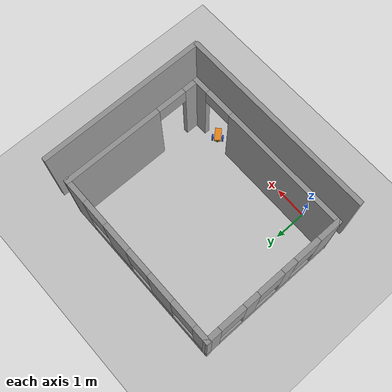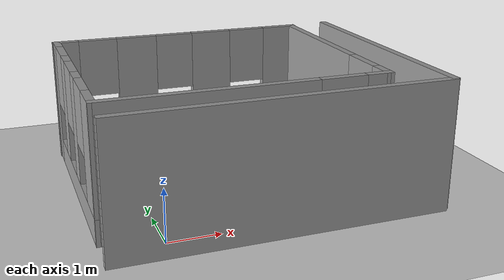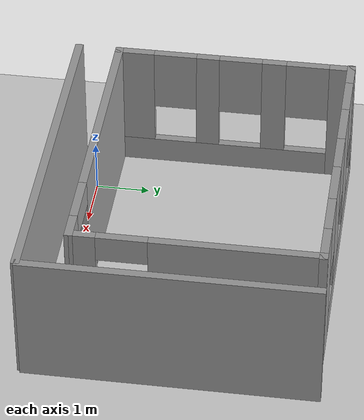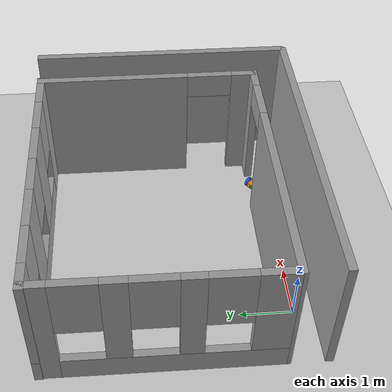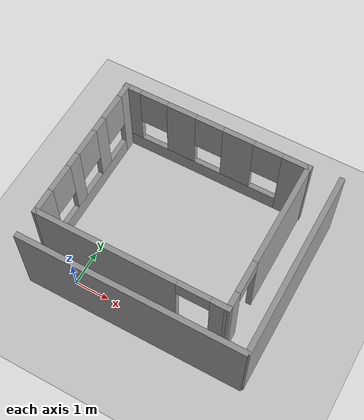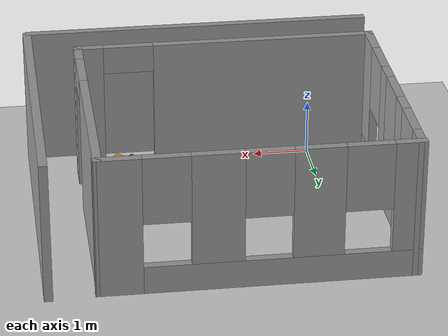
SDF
<sdf version="1.6">
 <world name="default">
  <model name="ground_plane">
   <static>1</static>
   <link name="link">
    <collision name="collision">
     <geometry><plane><normal>0 0 1</normal><size>100 100</size></plane></geometry>
     <surface>
      <contact><collide_bitmask>65535</collide_bitmask></contact>
      <friction><ode><mu>100</mu><mu2>50</mu2></ode></friction>
     </surface>
    </collision>
    <visual name="visual">
     <cast_shadows>0</cast_shadows>
     <geometry><plane><normal>0 0 1</normal><size>100 100</size></plane></geometry>
     <material>
      <script><uri>file://media/materials/scripts/gazebo.material</uri><name>Gazebo/Grey</name></script>
     </material>
    </visual>
   </link>
  </model>
  <gravity>0 0 -9.8</gravity>
  <magnetic_field>6e-06 2.3e-05 -4.2e-05</magnetic_field>
  <atmosphere type="adiabatic"/>
  <physics name="default_physics" default="0" type="ode">
   <max_step_size>0.001</max_step_size>
   <real_time_factor>1</real_time_factor>
   <real_time_update_rate>1000</real_time_update_rate>
  </physics>
  <scene><ambient>0.4 0.4 0.4 1</ambient><background>0.7 0.7 0.7 1</background><shadows>1</shadows></scene>
  <audio><device>default</device></audio>
  <spherical_coordinates>
   <surface_model>EARTH_WGS84</surface_model>
   <latitude_deg>0</latitude_deg>
   <longitude_deg>0</longitude_deg>
   <elevation>0</elevation>
   <heading_deg>0</heading_deg>
  </spherical_coordinates>
  <model name="mybot">
   <link name="chassis">
    <inertial>
     <pose>0.00198 0 0.09901 0 -0 0</pose>
     <mass>10.1</mass>
     <inertia>
      <ixx>0.500992</ixx>
      <ixy>0</ixy>
      <ixz>0.0019802</ixz>
      <iyy>1.00495</iyy>
      <iyz>0</iyz>
      <izz>0.103963</izz>
     </inertia>
    </inertial>
    <collision name="chassis_fixed_joint_lump__collision_collision">
     <geometry><box><size>0.4 0.2 0.1</size></box></geometry>
    </collision>
    <collision name="chassis_fixed_joint_lump__caster_collision_collision_1">
     <pose>-0.15 0 -0.05 0 -0 0</pose>
     <geometry><sphere><radius>0.05</radius></sphere></geometry>
    </collision>
    <collision name="chassis_fixed_joint_lump__camera_collision_2">
     <pose>0.2 0 0 0 -0 0</pose>
     <geometry><box><size>0.05 0.05 0.05</size></box></geometry>
    </collision>
    <visual name="chassis_visual_visual">
     <geometry><box><size>0.4 0.2 0.1</size></box></geometry>
     <material>
      <script><name>Gazebo/Orange</name><uri>file://media/materials/scripts/gazebo.material</uri></script>
     </material>
    </visual>
    <visual name="chassis_fixed_joint_lump__caster_visual_visual_1">
     <pose>-0.15 0 -0.05 0 -0 0</pose>
     <geometry><sphere><radius>0.05</radius></sphere></geometry>
    </visual>
    <visual name="chassis_fixed_joint_lump__camera_visual_2">
     <pose>0.2 0 0 0 -0 0</pose>
     <geometry><box><size>0.05 0.05 0.05</size></box></geometry>
     <material>
      <script><name>Gazebo/Green</name><uri>file://media/materials/scripts/gazebo.material</uri></script>
     </material>
    </visual>
    <sensor name="camera1" type="camera">
     <update_rate>30</update_rate>
     <camera name="head">
      <horizontal_fov>1.39626</horizontal_fov>
      <image><width>800</width><height>800</height><format>R8G8B8</format></image>
      <clip><near>0.02</near><far>300</far></clip>
     </camera>
     <plugin name="camera_controller" filename="libgazebo_ros_camera.so">
      <alwaysOn>1</alwaysOn>
      <updateRate>0.0</updateRate>
      <cameraName>mybot/camera1</cameraName>
      <imageTopicName>image_raw</imageTopicName>
      <cameraInfoTopicName>camera_info</cameraInfoTopicName>
      <frameName>camera_link_optical</frameName>
      <hackBaseline>0.07</hackBaseline>
      <distortionK1>0.0</distortionK1>
      <distortionK2>0.0</distortionK2>
      <distortionK3>0.0</distortionK3>
      <distortionT1>0.0</distortionT1>
      <distortionT2>0.0</distortionT2>
      <robotNamespace>/</robotNamespace>
     </plugin>
     <pose>0.2 0 0 0 -0 0</pose>
    </sensor>
   </link>
   <link name="left_wheel">
    <pose>0.1 0.15 0 0 -0 0</pose>
    <inertial>
     <pose>0 0 0 -0 1.5707 1.5707</pose>
     <mass>5</mass>
     <inertia><ixx>1</ixx><ixy>0</ixy><ixz>0</ixz><iyy>1</iyy><iyz>0</iyz><izz>1</izz></inertia>
    </inertial>
    <collision name="left_wheel_fixed_joint_lump__collision_collision">
     <pose>0 0 0 3.14159 1.57079 -1.57089</pose>
     <geometry><cylinder><length>0.05</length><radius>0.1</radius></cylinder></geometry>
    </collision>
    <visual name="left_wheel_visual_visual">
     <pose>0 0 0 3.14159 1.57079 -1.57089</pose>
     <geometry><cylinder><length>0.05</length><radius>0.1</radius></cylinder></geometry>
     <material>
      <script><name>Gazebo/Blue</name><uri>file://media/materials/scripts/gazebo.material</uri></script>
     </material>
    </visual>
   </link>
   <joint name="left_wheel_hinge" type="revolute">
    <child>left_wheel</child>
    <parent>chassis</parent>
    <axis>
     <xyz>0 1 0</xyz>
     <limit><lower>-1e+16</lower><upper>1e+16</upper></limit>
     <dynamics><spring_reference>0</spring_reference><spring_stiffness>0</spring_stiffness></dynamics>
     <use_parent_model_frame>1</use_parent_model_frame>
    </axis>
   </joint>
   <link name="right_wheel">
    <pose>0.1 -0.15 0 0 -0 0</pose>
    <inertial>
     <pose>0 0 0 -0 1.5707 1.5707</pose>
     <mass>5</mass>
     <inertia><ixx>1</ixx><ixy>0</ixy><ixz>0</ixz><iyy>1</iyy><iyz>0</iyz><izz>1</izz></inertia>
    </inertial>
    <collision name="right_wheel_fixed_joint_lump__collision_collision">
     <pose>0 0 0 3.14159 1.57079 -1.57089</pose>
     <geometry><cylinder><length>0.05</length><radius>0.1</radius></cylinder></geometry>
    </collision>
    <visual name="right_wheel_visual_visual">
     <pose>0 0 0 3.14159 1.57079 -1.57089</pose>
     <geometry><cylinder><length>0.05</length><radius>0.1</radius></cylinder></geometry>
     <material>
      <script><name>Gazebo/Blue</name><uri>file://media/materials/scripts/gazebo.material</uri></script>
     </material>
    </visual>
   </link>
   <joint name="right_wheel_hinge" type="revolute">
    <child>right_wheel</child>
    <parent>chassis</parent>
    <axis>
     <xyz>0 1 0</xyz>
     <limit><lower>-1e+16</lower><upper>1e+16</upper></limit>
     <dynamics><spring_reference>0</spring_reference><spring_stiffness>0</spring_stiffness></dynamics>
     <use_parent_model_frame>1</use_parent_model_frame>
    </axis>
   </joint>
   <static>0</static>
   <plugin name="differential_drive_controller" filename="libgazebo_ros_diff_drive.so">
    <legacyMode>0</legacyMode>
    <alwaysOn>1</alwaysOn>
    <updateRate>20</updateRate>
    <leftJoint>left_wheel_hinge</leftJoint>
    <rightJoint>right_wheel_hinge</rightJoint>
    <wheelSeparation>0.3</wheelSeparation>
    <wheelDiameter>0.2</wheelDiameter>
    <torque>20</torque>
    <commandTopic>cmd_vel</commandTopic>
    <odometryTopic>odom</odometryTopic>
    <odometryFrame>odom</odometryFrame>
    <robotBaseFrame>chassis</robotBaseFrame>
    <robotNamespace>/</robotNamespace>
   </plugin>
   <pose>3.47576 0.15109 0.1 -9e-06 -9e-06 2.31564</pose>
  </model>
  <light name="user_point_light_0" type="point">
   <pose>1.41766 3.13761 1 0 -0 0</pose>
   <diffuse>0.5 0.5 0.5 1</diffuse>
   <specular>0.1 0.1 0.1 1</specular>
   <attenuation>
    <range>20</range>
    <constant>0.5</constant>
    <linear>0.01</linear>
    <quadratic>0.001</quadratic>
   </attenuation>
   <cast_shadows>0</cast_shadows>
   <direction>0 0 -1</direction>
  </light>
  <model name="room">
   <pose>2.03065 2.11737 0 0 -0 0</pose>
   <link name="Wall_21">
    <pose>2.21751 0.356003 0 0 -0 1.5708</pose>
    <visual name="Wall_21_Visual_0">
     <pose>-1.98201 0 1.25 0 -0 0</pose>
     <geometry><box><size>0.535972 0.15 2.5</size></box></geometry>
     <material>
      <script><uri>file://media/materials/scripts/gazebo.material</uri><name>Gazebo/Grey</name></script>
      <ambient>1 1 1 1</ambient>
     </material>
     <meta><layer>0</layer></meta>
    </visual>
    <collision name="Wall_21_Collision_0">
     <geometry><box><size>0.535972 0.15 2.5</size></box></geometry>
     <pose>-1.98201 0 1.25 0 -0 0</pose>
    </collision>
    <visual name="Wall_21_Visual_1">
     <pose>0.717986 0 1.25 0 -0 0</pose>
     <geometry><box><size>3.06403 0.15 2.5</size></box></geometry>
     <material>
      <script><uri>file://media/materials/scripts/gazebo.material</uri><name>Gazebo/Grey</name></script>
      <ambient>1 1 1 1</ambient>
     </material>
     <meta><layer>0</layer></meta>
    </visual>
    <collision name="Wall_21_Collision_1">
     <geometry><box><size>3.06403 0.15 2.5</size></box></geometry>
     <pose>0.717986 0 1.25 0 -0 0</pose>
    </collision>
    <visual name="Wall_21_Visual_2">
     <pose>-1.26403 0 2.25 0 -0 0</pose>
     <geometry><box><size>0.9 0.15 0.5</size></box></geometry>
     <material>
      <script><uri>file://media/materials/scripts/gazebo.material</uri><name>Gazebo/Grey</name></script>
      <ambient>1 1 1 1</ambient>
     </material>
     <meta><layer>0</layer></meta>
    </visual>
    <collision name="Wall_21_Collision_2">
     <geometry><box><size>0.9 0.15 0.5</size></box></geometry>
     <pose>-1.26403 0 2.25 0 -0 0</pose>
    </collision>
   </link>
   <link name="Wall_22">
    <pose>-0.425469 2.53703 0 0 -0 3.13933</pose>
    <visual name="Wall_22_Visual_0">
     <pose>-2.33459 0 1.25 0 -0 0</pose>
     <geometry><box><size>0.801768 0.15 2.5</size></box></geometry>
     <material>
      <script><uri>file://media/materials/scripts/gazebo.material</uri><name>Gazebo/Grey</name></script>
      <ambient>1 1 1 1</ambient>
     </material>
     <meta><layer>0</layer></meta>
    </visual>
    <collision name="Wall_22_Collision_0">
     <geometry><box><size>0.801768 0.15 2.5</size></box></geometry>
     <pose>-2.33459 0 1.25 0 -0 0</pose>
    </collision>
    <visual name="Wall_22_Visual_1">
     <pose>0.400884 0 0.25 0 -0 0</pose>
     <geometry><box><size>4.66918 0.15 0.5</size></box></geometry>
     <material>
      <script><uri>file://media/materials/scripts/gazebo.material</uri><name>Gazebo/Grey</name></script>
      <ambient>1 1 1 1</ambient>
     </material>
     <meta><layer>0</layer></meta>
    </visual>
    <collision name="Wall_22_Collision_1">
     <geometry><box><size>4.66918 0.15 0.5</size></box></geometry>
     <pose>0.400884 0 0.25 0 -0 0</pose>
    </collision>
    <visual name="Wall_22_Visual_2">
     <pose>-0.693606 0 1.5 0 -0 0</pose>
     <geometry><box><size>0.880202 0.15 2</size></box></geometry>
     <material>
      <script><uri>file://media/materials/scripts/gazebo.material</uri><name>Gazebo/Grey</name></script>
      <ambient>1 1 1 1</ambient>
     </material>
     <meta><layer>0</layer></meta>
    </visual>
    <collision name="Wall_22_Collision_2">
     <geometry><box><size>0.880202 0.15 2</size></box></geometry>
     <pose>-0.693606 0 1.5 0 -0 0</pose>
    </collision>
    <visual name="Wall_22_Visual_3">
     <pose>0.974881 0 1.5 0 -0 0</pose>
     <geometry><box><size>0.856771 0.15 2</size></box></geometry>
     <material>
      <script><uri>file://media/materials/scripts/gazebo.material</uri><name>Gazebo/Grey</name></script>
      <ambient>1 1 1 1</ambient>
     </material>
     <meta><layer>0</layer></meta>
    </visual>
    <collision name="Wall_22_Collision_3">
     <geometry><box><size>0.856771 0.15 2</size></box></geometry>
     <pose>0.974881 0 1.5 0 -0 0</pose>
    </collision>
    <visual name="Wall_22_Visual_4">
     <pose>2.46937 0 1.5 0 -0 0</pose>
     <geometry><box><size>0.532208 0.15 2</size></box></geometry>
     <material>
      <script><uri>file://media/materials/scripts/gazebo.material</uri><name>Gazebo/Grey</name></script>
      <ambient>1 1 1 1</ambient>
     </material>
     <meta><layer>0</layer></meta>
    </visual>
    <collision name="Wall_22_Collision_4">
     <geometry><box><size>0.532208 0.15 2</size></box></geometry>
     <pose>2.46937 0 1.5 0 -0 0</pose>
    </collision>
    <visual name="Wall_22_Visual_5">
     <pose>-1.53371 0 1.9 0 -0 0</pose>
     <geometry><box><size>0.8 0.15 1.2</size></box></geometry>
     <material>
      <script><uri>file://media/materials/scripts/gazebo.material</uri><name>Gazebo/Grey</name></script>
      <ambient>1 1 1 1</ambient>
     </material>
     <meta><layer>0</layer></meta>
    </visual>
    <collision name="Wall_22_Collision_5">
     <geometry><box><size>0.8 0.15 1.2</size></box></geometry>
     <pose>-1.53371 0 1.9 0 -0 0</pose>
    </collision>
    <visual name="Wall_22_Visual_6">
     <pose>0.146495 0 1.9 0 -0 0</pose>
     <geometry><box><size>0.8 0.15 1.2</size></box></geometry>
     <material>
      <script><uri>file://media/materials/scripts/gazebo.material</uri><name>Gazebo/Grey</name></script>
      <ambient>1 1 1 1</ambient>
     </material>
     <meta><layer>0</layer></meta>
    </visual>
    <collision name="Wall_22_Collision_6">
     <geometry><box><size>0.8 0.15 1.2</size></box></geometry>
     <pose>0.146495 0 1.9 0 -0 0</pose>
    </collision>
    <visual name="Wall_22_Visual_7">
     <pose>1.80327 0 1.9 0 -0 0</pose>
     <geometry><box><size>0.8 0.15 1.2</size></box></geometry>
     <material>
      <script><uri>file://media/materials/scripts/gazebo.material</uri><name>Gazebo/Grey</name></script>
      <ambient>1 1 1 1</ambient>
     </material>
     <meta><layer>0</layer></meta>
    </visual>
    <collision name="Wall_22_Collision_7">
     <geometry><box><size>0.8 0.15 1.2</size></box></geometry>
     <pose>1.80327 0 1.9 0 -0 0</pose>
    </collision>
   </link>
   <link name="Wall_25">
    <pose>-3.06845 0.368051 0 0 -0 -1.5708</pose>
    <visual name="Wall_25_Visual_0">
     <pose>-2.01148 0 1.25 0 -0 0</pose>
     <geometry><box><size>0.477049 0.15 2.5</size></box></geometry>
     <material>
      <script><uri>file://media/materials/scripts/gazebo.material</uri><name>Gazebo/Grey</name></script>
      <ambient>1 1 1 1</ambient>
     </material>
     <meta><layer>0</layer></meta>
    </visual>
    <collision name="Wall_25_Collision_0">
     <geometry><box><size>0.477049 0.15 2.5</size></box></geometry>
     <pose>-2.01148 0 1.25 0 -0 0</pose>
    </collision>
    <visual name="Wall_25_Visual_1">
     <pose>0.238524 0 0.25 0 -0 0</pose>
     <geometry><box><size>4.02295 0.15 0.5</size></box></geometry>
     <material>
      <script><uri>file://media/materials/scripts/gazebo.material</uri><name>Gazebo/Grey</name></script>
      <ambient>1 1 1 1</ambient>
     </material>
     <meta><layer>0</layer></meta>
    </visual>
    <collision name="Wall_25_Collision_1">
     <geometry><box><size>4.02295 0.15 0.5</size></box></geometry>
     <pose>0.238524 0 0.25 0 -0 0</pose>
    </collision>
    <visual name="Wall_25_Visual_2">
     <pose>-0.746484 0 1.5 0 -0 0</pose>
     <geometry><box><size>0.452934 0.15 2</size></box></geometry>
     <material>
      <script><uri>file://media/materials/scripts/gazebo.material</uri><name>Gazebo/Grey</name></script>
      <ambient>1 1 1 1</ambient>
     </material>
     <meta><layer>0</layer></meta>
    </visual>
    <collision name="Wall_25_Collision_2">
     <geometry><box><size>0.452934 0.15 2</size></box></geometry>
     <pose>-0.746484 0 1.5 0 -0 0</pose>
    </collision>
    <visual name="Wall_25_Visual_3">
     <pose>0.495194 0 1.5 0 -0 0</pose>
     <geometry><box><size>0.430423 0.15 2</size></box></geometry>
     <material>
      <script><uri>file://media/materials/scripts/gazebo.material</uri><name>Gazebo/Grey</name></script>
      <ambient>1 1 1 1</ambient>
     </material>
     <meta><layer>0</layer></meta>
    </visual>
    <collision name="Wall_25_Collision_3">
     <geometry><box><size>0.430423 0.15 2</size></box></geometry>
     <pose>0.495194 0 1.5 0 -0 0</pose>
    </collision>
    <visual name="Wall_25_Visual_4">
     <pose>1.8802 0 1.5 0 -0 0</pose>
     <geometry><box><size>0.739594 0.15 2</size></box></geometry>
     <material>
      <script><uri>file://media/materials/scripts/gazebo.material</uri><name>Gazebo/Grey</name></script>
      <ambient>1 1 1 1</ambient>
     </material>
     <meta><layer>0</layer></meta>
    </visual>
    <collision name="Wall_25_Collision_4">
     <geometry><box><size>0.739594 0.15 2</size></box></geometry>
     <pose>1.8802 0 1.5 0 -0 0</pose>
    </collision>
    <visual name="Wall_25_Visual_5">
     <pose>-1.37295 0 1.9 0 -0 0</pose>
     <geometry><box><size>0.8 0.15 1.2</size></box></geometry>
     <material>
      <script><uri>file://media/materials/scripts/gazebo.material</uri><name>Gazebo/Grey</name></script>
      <ambient>1 1 1 1</ambient>
     </material>
     <meta><layer>0</layer></meta>
    </visual>
    <collision name="Wall_25_Collision_5">
     <geometry><box><size>0.8 0.15 1.2</size></box></geometry>
     <pose>-1.37295 0 1.9 0 -0 0</pose>
    </collision>
    <visual name="Wall_25_Visual_6">
     <pose>-0.120017 0 1.9 0 -0 0</pose>
     <geometry><box><size>0.8 0.15 1.2</size></box></geometry>
     <material>
      <script><uri>file://media/materials/scripts/gazebo.material</uri><name>Gazebo/Grey</name></script>
      <ambient>1 1 1 1</ambient>
     </material>
     <meta><layer>0</layer></meta>
    </visual>
    <collision name="Wall_25_Collision_6">
     <geometry><box><size>0.8 0.15 1.2</size></box></geometry>
     <pose>-0.120017 0 1.9 0 -0 0</pose>
    </collision>
    <visual name="Wall_25_Visual_7">
     <pose>1.11041 0 1.9 0 -0 0</pose>
     <geometry><box><size>0.8 0.15 1.2</size></box></geometry>
     <material>
      <script><uri>file://media/materials/scripts/gazebo.material</uri><name>Gazebo/Grey</name></script>
      <ambient>1 1 1 1</ambient>
     </material>
     <meta><layer>0</layer></meta>
    </visual>
    <collision name="Wall_25_Collision_7">
     <geometry><box><size>0.8 0.15 1.2</size></box></geometry>
     <pose>1.11041 0 1.9 0 -0 0</pose>
    </collision>
   </link>
   <link name="Wall_27">
    <pose>-0.425469 -1.81297 0 0 -0 -0.002279</pose>
    <visual name="Wall_27_Visual_0">
     <pose>-0.712757 0 1.25 0 -0 0</pose>
     <geometry><box><size>4.01046 0.15 2.5</size></box></geometry>
     <material>
      <script><uri>file://media/materials/scripts/gazebo.material</uri><name>Gazebo/Grey</name></script>
      <ambient>1 1 1 1</ambient>
     </material>
     <meta><layer>0</layer></meta>
    </visual>
    <collision name="Wall_27_Collision_0">
     <geometry><box><size>4.01046 0.15 2.5</size></box></geometry>
     <pose>-0.712757 0 1.25 0 -0 0</pose>
    </collision>
    <visual name="Wall_27_Visual_1">
     <pose>2.45523 0 1.25 0 -0 0</pose>
     <geometry><box><size>0.525514 0.15 2.5</size></box></geometry>
     <material>
      <script><uri>file://media/materials/scripts/gazebo.material</uri><name>Gazebo/Grey</name></script>
      <ambient>1 1 1 1</ambient>
     </material>
     <meta><layer>0</layer></meta>
    </visual>
    <collision name="Wall_27_Collision_1">
     <geometry><box><size>0.525514 0.15 2.5</size></box></geometry>
     <pose>2.45523 0 1.25 0 -0 0</pose>
    </collision>
    <visual name="Wall_27_Visual_2">
     <pose>1.74247 0 2.25 0 -0 0</pose>
     <geometry><box><size>0.9 0.15 0.5</size></box></geometry>
     <material>
      <script><uri>file://media/materials/scripts/gazebo.material</uri><name>Gazebo/Grey</name></script>
      <ambient>1 1 1 1</ambient>
     </material>
     <meta><layer>0</layer></meta>
    </visual>
    <collision name="Wall_27_Collision_2">
     <geometry><box><size>0.9 0.15 0.5</size></box></geometry>
     <pose>1.74247 0 2.25 0 -0 0</pose>
    </collision>
   </link>
   <link name="Wall_29">
    <collision name="Wall_29_Collision">
     <geometry><box><size>5.25 0.15 2.5</size></box></geometry>
     <pose>0 0 1.25 0 -0 0</pose>
    </collision>
    <visual name="Wall_29_Visual">
     <pose>0 0 1.25 0 -0 0</pose>
     <geometry><box><size>5.25 0.15 2.5</size></box></geometry>
     <material>
      <script><uri>file://media/materials/scripts/gazebo.material</uri><name>Gazebo/Grey</name></script>
      <ambient>1 1 1 1</ambient>
     </material>
     <meta><layer>0</layer></meta>
    </visual>
    <pose>3.08611 0.02453 0 0 -0 1.5708</pose>
   </link>
   <link name="Wall_34">
    <collision name="Wall_34_Collision">
     <geometry><box><size>6.25 0.15 2.5</size></box></geometry>
     <pose>0 0 1.25 0 -0 0</pose>
    </collision>
    <visual name="Wall_34_Visual">
     <pose>0 0 1.25 0 -0 0</pose>
     <geometry><box><size>6.25 0.15 2.5</size></box></geometry>
     <material>
      <script><uri>file://media/materials/scripts/gazebo.material</uri><name>Gazebo/Grey</name></script>
      <ambient>1 1 1 1</ambient>
     </material>
     <meta><layer>0</layer></meta>
    </visual>
    <pose>-0.011312 -2.57453 0 0 -0 0</pose>
   </link>
   <static>1</static>
  </model>
 </world>
</sdf>
